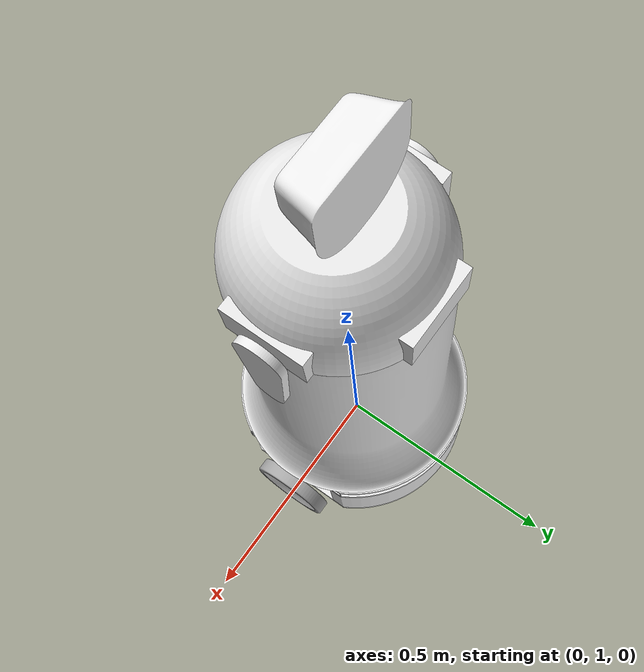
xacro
<?xml version="1.0"?>

<robot name="Walter" xmlns:xacro="http://www.ros.org/wiki/xacro">

    <xacro:include filename="robot_gazebo.xacro" />

    <link name="base">

    </link>

    <link name="fijos_inferior">
        <visual>
            <origin xyz="-3.6429192995512948983e-17 0.20637340124470746061 0.010000000000000000208"
                rpy="0 -0 0" />
            <geometry>
                <mesh filename="package://walter_description/meshes/eje_caster.stl" />
            </geometry>
            <material name="eje_caster_material">
                <color
                    rgba="0.91764705882352937127 0.91764705882352937127 0.91764705882352937127 1.0" />
            </material>
        </visual>
        <collision>
            <origin xyz="-3.6429192995512948983e-17 0.20637340124470746061 0.010000000000000000208"
                rpy="0 -0 0" />
            <geometry>
                <mesh filename="package://walter_description/meshes/eje_caster.stl" />
            </geometry>
        </collision>
        <visual>
            <origin xyz="0 0 0.034999999999999975575" rpy="0 -0 1.570796326794896558" />
            <geometry>
                <mesh filename="package://walter_description/meshes/eje.stl" />
            </geometry>
            <material name="eje_material">
                <color
                    rgba="0.61568627450980395466 0.81176470588235294379 0.92941176470588238168 1.0" />
            </material>
        </visual>
        <collision>
            <origin xyz="0 0 0.034999999999999975575" rpy="0 -0 1.570796326794896558" />
            <geometry>
                <mesh filename="package://walter_description/meshes/eje.stl" />
            </geometry>
        </collision>
        <visual>
            <origin xyz="0 0.20637340124470748837 0.14700000000000001954" rpy="0 -0 0" />
            <geometry>
                <mesh filename="package://walter_description/meshes/part_1.stl" />
            </geometry>
            <material name="part_1_material">
                <color rgba="0.2313725490196078538 0.38039215686274507888 0.7058823529411765163 1.0" />
            </material>
        </visual>
        <collision>
            <origin xyz="0 0.20637340124470748837 0.14700000000000001954" rpy="0 -0 0" />
            <geometry>
                <mesh filename="package://walter_description/meshes/part_1.stl" />
            </geometry>
        </collision>
        <visual>
            <origin xyz="0.03174999999999996575 0.19049840124470746039 -0.038998000000000004883"
                rpy="3.141592653589793116 -0 -1.570796326794896558" />
            <geometry>
                <mesh filename="package://walter_description/meshes/llanta_izquierda.stl" />
            </geometry>
            <material name="llanta_izquierda_material">
                <color
                    rgba="0.91764705882352937127 0.91764705882352937127 0.91764705882352937127 1.0" />
            </material>
        </visual>
        <collision>
            <origin xyz="0.03174999999999996575 0.19049840124470746039 -0.038998000000000004883"
                rpy="3.141592653589793116 -0 -1.570796326794896558" />
            <geometry>
                <mesh filename="package://walter_description/meshes/llanta_izquierda.stl" />
            </geometry>
        </collision>
        <visual>
            <origin xyz="-0.031750000000000062894 -0.19049840124470740488 -0.038998000000000004883"
                rpy="0 -0 -1.570796326794896558" />
            <geometry>
                <mesh filename="package://walter_description/meshes/llanta_izquierda.stl" />
            </geometry>
            <material name="llanta_izquierda_material">
                <color
                    rgba="0.91764705882352937127 0.91764705882352937127 0.91764705882352937127 1.0" />
            </material>
        </visual>
        <collision>
            <origin xyz="-0.031750000000000062894 -0.19049840124470740488 -0.038998000000000004883"
                rpy="0 -0 -1.570796326794896558" />
            <geometry>
                <mesh filename="package://walter_description/meshes/llanta_izquierda.stl" />
            </geometry>
        </collision>
        <visual>
            <origin xyz="0.21499999999999996891 -0.11747340124470734279 0.17240000000000002545"
                rpy="3.141592653589793116 -0 0" />
            <geometry>
                <mesh filename="package://walter_description/meshes/part_1.stl" />
            </geometry>
            <material name="part_1_material">
                <color rgba="0 0 0 1.0" />
            </material>
        </visual>
        <collision>
            <origin xyz="0.21499999999999996891 -0.11747340124470734279 0.17240000000000002545"
                rpy="3.141592653589793116 -0 0" />
            <geometry>
                <mesh filename="package://walter_description/meshes/part_1.stl" />
            </geometry>
        </collision>
        <visual>
            <origin xyz="0 0 0" rpy="0 -0 0" />
            <geometry>
                <mesh filename="package://walter_description/meshes/base.stl" />
            </geometry>
            <material name="base_material">
                <color
                    rgba="0.90196078431372550543 0.90196078431372550543 0.90196078431372550543 1.0" />
            </material>
        </visual>
        <collision>
            <origin xyz="0 0 0" rpy="0 -0 0" />
            <geometry>
                <mesh filename="package://walter_description/meshes/base.stl" />
            </geometry>
        </collision>
        <visual>
            <origin xyz="0.031749999999999944933 -0.19049840124470740488 -0.038998000000000004883"
                rpy="3.141592653589793116 -0 -1.570796326794896558" />
            <geometry>
                <mesh filename="package://walter_description/meshes/llanta_izquierda.stl" />
            </geometry>
            <material name="llanta_izquierda_material">
                <color
                    rgba="0.91764705882352937127 0.91764705882352937127 0.91764705882352937127 1.0" />
            </material>
        </visual>
        <collision>
            <origin xyz="0.031749999999999944933 -0.19049840124470740488 -0.038998000000000004883"
                rpy="3.141592653589793116 -0 -1.570796326794896558" />
            <geometry>
                <mesh filename="package://walter_description/meshes/llanta_izquierda.stl" />
            </geometry>
        </collision>
        <visual>
            <origin xyz="0.21499999999999985789 0.11747340124470750933 0.17240000000000002545"
                rpy="3.141592653589793116 -0 0" />
            <geometry>
                <mesh filename="package://walter_description/meshes/part_1.stl" />
            </geometry>
            <material name="part_1_material">
                <color rgba="0 0 0 1.0" />
            </material>
        </visual>
        <collision>
            <origin xyz="0.21499999999999985789 0.11747340124470750933 0.17240000000000002545"
                rpy="3.141592653589793116 -0 0" />
            <geometry>
                <mesh filename="package://walter_description/meshes/part_1.stl" />
            </geometry>
        </collision>
        <visual>
            <origin
                xyz="2.2204460492503130808e-16 -4.2999999999571159037e-06 0.010000000000000008882"
                rpy="0 -0 0" />
            <geometry>
                <mesh filename="package://walter_description/meshes/part_1.stl" />
            </geometry>
            <material name="part_1_material">
                <color
                    rgba="0.91764705882352937127 0.91764705882352937127 0.91764705882352937127 1.0" />
            </material>
        </visual>
        <collision>
            <origin
                xyz="2.2204460492503130808e-16 -4.2999999999571159037e-06 0.010000000000000008882"
                rpy="0 -0 0" />
            <geometry>
                <mesh filename="package://walter_description/meshes/part_1.stl" />
            </geometry>
        </collision>
        <visual>
            <origin
                xyz="-5.5511151231257827021e-17 1.3877787807814456755e-16 0.18240000000000003433"
                rpy="3.141592653589793116 -0 0" />
            <geometry>
                <mesh filename="package://walter_description/meshes/base.stl" />
            </geometry>
            <material name="base_material">
                <color
                    rgba="0.90196078431372550543 0.90196078431372550543 0.90196078431372550543 1.0" />
            </material>
        </visual>
        <collision>
            <origin
                xyz="-5.5511151231257827021e-17 1.3877787807814456755e-16 0.18240000000000003433"
                rpy="3.141592653589793116 -0 0" />
            <geometry>
                <mesh filename="package://walter_description/meshes/base.stl" />
            </geometry>
        </collision>
        <visual>
            <origin xyz="-3.7024656657773666662e-17 -0.2063734012447074051 0.010000000000000000208"
                rpy="0 -0 1.570796326794896558" />
            <geometry>
                <mesh filename="package://walter_description/meshes/eje_caster.stl" />
            </geometry>
            <material name="eje_caster_material">
                <color
                    rgba="0.91764705882352937127 0.91764705882352937127 0.91764705882352937127 1.0" />
            </material>
        </visual>
        <collision>
            <origin xyz="-3.7024656657773666662e-17 -0.2063734012447074051 0.010000000000000000208"
                rpy="0 -0 1.570796326794896558" />
            <geometry>
                <mesh filename="package://walter_description/meshes/eje_caster.stl" />
            </geometry>
        </collision>
        <visual>
            <origin xyz="0 6.3654714215704502031e-17 0.13700000000000001066" rpy="0 -0 0" />
            <geometry>
                <mesh filename="package://walter_description/meshes/base.stl" />
            </geometry>
            <material name="base_material">
                <color
                    rgba="0.90196078431372550543 0.90196078431372550543 0.90196078431372550543 1.0" />
            </material>
        </visual>
        <collision>
            <origin xyz="0 6.3654714215704502031e-17 0.13700000000000001066" rpy="0 -0 0" />
            <geometry>
                <mesh filename="package://walter_description/meshes/base.stl" />
            </geometry>
        </collision>
        <visual>
            <origin
                xyz="-5.8090702579312169077e-17 -0.17462340124470740466 -0.036458000000000004293"
                rpy="0 -0 -1.570796326794896558" />
            <geometry>
                <mesh filename="package://walter_description/meshes/base_caster.stl" />
            </geometry>
            <material name="base_caster_material">
                <color
                    rgba="0.91764705882352937127 0.91764705882352937127 0.91764705882352937127 1.0" />
            </material>
        </visual>
        <collision>
            <origin
                xyz="-5.8090702579312169077e-17 -0.17462340124470740466 -0.036458000000000004293"
                rpy="0 -0 -1.570796326794896558" />
            <geometry>
                <mesh filename="package://walter_description/meshes/base_caster.stl" />
            </geometry>
        </collision>
        <visual>
            <origin xyz="-3.6429192995512948983e-17 0.20637340124470746061 -0.036458000000000004293"
                rpy="0 -0 -1.570796326794896558" />
            <geometry>
                <mesh filename="package://walter_description/meshes/base_caster.stl" />
            </geometry>
            <material name="base_caster_material">
                <color
                    rgba="0.91764705882352937127 0.91764705882352937127 0.91764705882352937127 1.0" />
            </material>
        </visual>
        <collision>
            <origin xyz="-3.6429192995512948983e-17 0.20637340124470746061 -0.036458000000000004293"
                rpy="0 -0 -1.570796326794896558" />
            <geometry>
                <mesh filename="package://walter_description/meshes/base_caster.stl" />
            </geometry>
        </collision>
        <visual>
            <origin xyz="-0.031750000000000042077 0.19049840124470746039 -0.038998000000000004883"
                rpy="5.6331306980660048516e-17 -1.4803827447097239745 1.57079632679489678" />
            <geometry>
                <mesh filename="package://walter_description/meshes/llanta_izquierda.stl" />
            </geometry>
            <material name="llanta_izquierda_material">
                <color
                    rgba="0.91764705882352937127 0.91764705882352937127 0.91764705882352937127 1.0" />
            </material>
        </visual>
        <collision>
            <origin xyz="-0.031750000000000042077 0.19049840124470746039 -0.038998000000000004883"
                rpy="5.6331306980660048516e-17 -1.4803827447097239745 1.57079632679489678" />
            <geometry>
                <mesh filename="package://walter_description/meshes/llanta_izquierda.stl" />
            </geometry>
        </collision>
        <visual>
            <origin
                xyz="1.1102230246251565404e-16 4.2999999999571159037e-06 0.010000000000000008882"
                rpy="0 -0 2.2204460492503130808e-16" />
            <geometry>
                <mesh filename="package://walter_description/meshes/part_2.stl" />
            </geometry>
            <material name="part_2_material">
                <color
                    rgba="0.91764705882352937127 0.91764705882352937127 0.91764705882352937127 1.0" />
            </material>
        </visual>
        <collision>
            <origin
                xyz="1.1102230246251565404e-16 4.2999999999571159037e-06 0.010000000000000008882"
                rpy="0 -0 2.2204460492503130808e-16" />
            <geometry>
                <mesh filename="package://walter_description/meshes/part_2.stl" />
            </geometry>
        </collision>
        <visual>
            <origin xyz="0 0 0.010000000000000008882" rpy="0 -0 0" />
            <geometry>
                <mesh filename="package://walter_description/meshes/tope.stl" />
            </geometry>
            <material name="tope_material">
                <color
                    rgba="0.61568627450980395466 0.81176470588235294379 0.92941176470588238168 1.0" />
            </material>
        </visual>
        <collision>
            <origin xyz="0 0 0.010000000000000008882" rpy="0 -0 0" />
            <geometry>
                <mesh filename="package://walter_description/meshes/tope.stl" />
            </geometry>
        </collision>
        <visual>
            <origin xyz="-0.21499999999999996891 -0.11747340124470739831 0.17240000000000002545"
                rpy="3.141592653589793116 -0 0" />
            <geometry>
                <mesh filename="package://walter_description/meshes/part_1.stl" />
            </geometry>
            <material name="part_1_material">
                <color rgba="0 0 0 1.0" />
            </material>
        </visual>
        <collision>
            <origin xyz="-0.21499999999999996891 -0.11747340124470739831 0.17240000000000002545"
                rpy="3.141592653589793116 -0 0" />
            <geometry>
                <mesh filename="package://walter_description/meshes/part_1.stl" />
            </geometry>
        </collision>
        <visual>
            <origin xyz="-0.21499999999999996891 0.11747340124470750933 0.17240000000000002545"
                rpy="3.141592653589793116 -0 0" />
            <geometry>
                <mesh filename="package://walter_description/meshes/part_1.stl" />
            </geometry>
            <material name="part_1_material">
                <color rgba="0 0 0 1.0" />
            </material>
        </visual>
        <collision>
            <origin xyz="-0.21499999999999996891 0.11747340124470750933 0.17240000000000002545"
                rpy="3.141592653589793116 -0 0" />
            <geometry>
                <mesh filename="package://walter_description/meshes/part_1.stl" />
            </geometry>
        </collision>
        <inertial>
            <origin
                xyz="-2.8287923786776706519e-16 0.00070076403068547931871 0.063721129461609529732"
                rpy="0 0 0" />
            <mass value="3.2429759430528646291" />
            <inertia ixx="0.10415453865160918812" ixy="-2.8043566817695375626e-17"
                ixz="8.2789000264635315141e-18" iyy="0.058090716254930119256"
                iyz="-0.00020983177751532813946" izz="0.15081168997690380662" />
        </inertial>
    </link>

    <link name="rueda">
        <visual>
            <origin xyz="0 1.7347234759768070944e-18 -0.015000000000000013323"
                rpy="1.570796326794896558 -4.8166279312749192404e-17 1.1043110575768980303e-17" />
            <geometry>
                <mesh filename="package://walter_description/meshes/llanta.stl" />
            </geometry>
            <material name="llanta_material">
                <color
                    rgba="0.64705882352941179736 0.64705882352941179736 0.64705882352941179736 1.0" />
            </material>
        </visual>
        <collision>
            <origin xyz="0 1.7347234759768070944e-18 -0.015000000000000013323"
                rpy="1.570796326794896558 -4.8166279312749192404e-17 1.1043110575768980303e-17" />
            <geometry>
                <mesh filename="package://walter_description/meshes/llanta.stl" />
            </geometry>
        </collision>
        <visual>
            <origin xyz="0 1.7347234759768070944e-18 -0.015000000000000013323"
                rpy="1.570796326794896558 4.8166279312749192404e-17 1.1043110575768980303e-17" />
            <geometry>
                <mesh filename="package://walter_description/meshes/aro.stl" />
            </geometry>
            <material name="aro_material">
                <color
                    rgba="0.91764705882352937127 0.91764705882352937127 0.91764705882352937127 1.0" />
            </material>
        </visual>
        <collision>
            <origin xyz="0 1.7347234759768070944e-18 -0.015000000000000013323"
                rpy="1.570796326794896558 4.8166279312749192404e-17 1.1043110575768980303e-17" />
            <geometry>
                <mesh filename="package://walter_description/meshes/aro.stl" />
            </geometry>
        </collision>
        <inertial>
            <origin
                xyz="4.0773657910392119231e-19 2.1184185656962591992e-18 -0.015000000000000015057"
                rpy="0 0 0" />
            <mass value="0.93131769000272324188" />
            <inertia ixx="0.0015774552565937652922" ixy="6.1581051987138702135e-20"
                ixz="5.0366822783115332543e-20" iyy="0.0015774552565937659428"
                iyz="-1.55152145863287197e-36" izz="0.0030708700939155232114" />
        </inertial>
    </link>

    <link name="rueda_2">
        <visual>
            <origin
                xyz="3.4694469519536141888e-18 3.4694469519536141888e-18 -0.014999999999999930056"
                rpy="-1.570796326794896558 4.8166279312749525204e-17 -3.9942434222536576438e-17" />
            <geometry>
                <mesh filename="package://walter_description/meshes/llanta.stl" />
            </geometry>
            <material name="llanta_material">
                <color
                    rgba="0.64705882352941179736 0.64705882352941179736 0.64705882352941179736 1.0" />
            </material>
        </visual>
        <collision>
            <origin
                xyz="3.4694469519536141888e-18 3.4694469519536141888e-18 -0.014999999999999930056"
                rpy="-1.570796326794896558 4.8166279312749525204e-17 -3.9942434222536576438e-17" />
            <geometry>
                <mesh filename="package://walter_description/meshes/llanta.stl" />
            </geometry>
        </collision>
        <visual>
            <origin
                xyz="3.4694469519536141888e-18 3.4694469519536141888e-18 -0.015000000000000013323"
                rpy="-1.570796326794896558 -4.8166279312749254034e-17 -3.9942434222536576438e-17" />
            <geometry>
                <mesh filename="package://walter_description/meshes/aro.stl" />
            </geometry>
            <material name="aro_material">
                <color
                    rgba="0.91764705882352937127 0.91764705882352937127 0.91764705882352937127 1.0" />
            </material>
        </visual>
        <collision>
            <origin
                xyz="3.4694469519536141888e-18 3.4694469519536141888e-18 -0.015000000000000013323"
                rpy="-1.570796326794896558 -4.8166279312749254034e-17 -3.9942434222536576438e-17" />
            <geometry>
                <mesh filename="package://walter_description/meshes/aro.stl" />
            </geometry>
        </collision>
        <inertial>
            <origin
                xyz="3.877183531057536296e-18 3.0857518622341620841e-18 -0.015000000000000006384"
                rpy="0 0 0" />
            <mass value="0.93131769000272324188" />
            <inertia ixx="0.0015774552565937659428" ixy="-1.8370398119808311534e-19"
                ixz="-5.0366822783115145968e-20" iyy="0.0015774552565937659428"
                iyz="-3.1297914736088726961e-34" izz="0.0030708700939155232114" />
        </inertial>
    </link>

    <link name="panza">
        <visual>
            <origin xyz="0 1.4818226269682977973e-17 0" rpy="3.141592653589793116 -0 0" />
            <geometry>
                <mesh filename="package://walter_description/meshes/torso.stl" />
            </geometry>
            <material name="torso_material">
                <color
                    rgba="0.90196078431372550543 0.90196078431372550543 0.90196078431372550543 1.0" />
            </material>
        </visual>
        <collision>
            <origin xyz="0 1.4818226269682977973e-17 0" rpy="3.141592653589793116 -0 0" />
            <geometry>
                <mesh filename="package://walter_description/meshes/torso.stl" />
            </geometry>
        </collision>
        <inertial>
            <origin
                xyz="1.5535797947362211452e-06 1.4903436437218943342e-07 -0.29803198679450909614"
                rpy="0 0 0" />
            <mass value="102.38152152064435541" />
            <inertia ixx="4.453162302546232354" ixy="-6.4620396263465369413e-06"
                ixz="-1.4643893877306453358e-05" iyy="4.4533587203083602191"
                iyz="-9.0042306279200009643e-06" izz="1.9581434344903740907" />
        </inertial>
    </link>

    <link name="cabeza_pecho">
        <visual>
            <origin xyz="0 0 0" rpy="3.141592653589793116 -0 0" />
            <geometry>
                <mesh filename="package://walter_description/meshes/pecho.stl" />
            </geometry>
            <material name="pecho_material">
                <color
                    rgba="0.90196078431372550543 0.90196078431372550543 0.90196078431372550543 1.0" />
            </material>
        </visual>
        <collision>
            <origin xyz="0 0 0" rpy="3.141592653589793116 -0 0" />
            <geometry>
                <mesh filename="package://walter_description/meshes/pecho.stl" />
            </geometry>
        </collision>
        <visual>
            <origin xyz="0.035000000000000003331 0 -0.26999999999999990674"
                rpy="3.141592653589793116 -0 0" />
            <geometry>
                <mesh filename="package://walter_description/meshes/cabeza.stl" />
            </geometry>
            <material name="cabeza_material">
                <color
                    rgba="0.90196078431372550543 0.90196078431372550543 0.90196078431372550543 1.0" />
            </material>
        </visual>
        <collision>
            <origin xyz="0.035000000000000003331 0 -0.26999999999999990674"
                rpy="3.141592653589793116 -0 0" />
            <geometry>
                <mesh filename="package://walter_description/meshes/cabeza.stl" />
            </geometry>
        </collision>
        <visual>
            <origin xyz="0 0.20499999999999998779 -0.013749999999999928946"
                rpy="3.141592653589793116 -0 3.141592653589793116" />
            <geometry>
                <mesh filename="package://walter_description/meshes/brazo1.stl" />
            </geometry>
            <material name="brazo1_material">
                <color
                    rgba="0.90196078431372550543 0.90196078431372550543 0.90196078431372550543 1.0" />
            </material>
        </visual>
        <collision>
            <origin xyz="0 0.20499999999999998779 -0.013749999999999928946"
                rpy="3.141592653589793116 -0 3.141592653589793116" />
            <geometry>
                <mesh filename="package://walter_description/meshes/brazo1.stl" />
            </geometry>
        </collision>
        <visual>
            <origin xyz="0 -0.19000000000000000222 -0.013749999999999928946"
                rpy="3.141592653589793116 -0 3.141592653589793116" />
            <geometry>
                <mesh filename="package://walter_description/meshes/brazo1.stl" />
            </geometry>
            <material name="brazo1_material">
                <color
                    rgba="0.90196078431372550543 0.90196078431372550543 0.90196078431372550543 1.0" />
            </material>
        </visual>
        <collision>
            <origin xyz="0 -0.19000000000000000222 -0.013749999999999928946"
                rpy="3.141592653589793116 -0 3.141592653589793116" />
            <geometry>
                <mesh filename="package://walter_description/meshes/brazo1.stl" />
            </geometry>
        </collision>
        <inertial>
            <origin
                xyz="0.0027034403972882059021 -0.00013515585095054546364 -0.089471824664970320273"
                rpy="0 0 0" />
            <mass value="23.341267721134858704" />
            <inertia ixx="0.3303436338269024608" ixy="1.3249684284778940517e-05"
                ixz="0.0069209153974705006629" iyy="0.29760949615305587468"
                iyz="-0.00058229169129747800071" izz="0.33286393113310386305" />
        </inertial>
    </link>

    <!--Joints -->

    <joint name="base_to_fijos_inferior" type="fixed">
        <parent link="base" />
        <child link="fijos_inferior" />
        <origin rpy="0 0 0" xyz="0 1 0" />
        <axis xyz="0 0 0" />
    </joint>

    <joint name="pecho" type="fixed">
        <origin xyz="0 1.4818226269682977973e-17 -0.625" rpy="0 -0 -1.570796326794896558" />
        <parent link="panza" />
        <child link="cabeza_pecho" />
        <axis xyz="0 0 1" />
        <joint_properties friction="0.0" />
    </joint>

    <joint name="cuerpo" type="fixed">
        <origin xyz="-2.7755575615628913511e-17 1.6747389215564200228e-16 0.18240000000000000657"
            rpy="3.141592653589793116 -0 0" />
        <parent link="fijos_inferior" />
        <child link="panza" />
        <axis xyz="0 0 1" />
        <joint_properties friction="0.0" />
    </joint>

    <joint name="rueda_derecha" type="continuous">
        <origin xyz="-0.22999999999999992673 4.0679265511656125131e-17 0.03500000000000001027"
            rpy="1.570796326794896558 1.3479208634112187504 1.570796326794896558" />
        <parent link="fijos_inferior" />
        <child link="rueda" />
        <axis xyz="0 0 1" />
        <limit effort="1.0" velocity="15" />
        <joint_properties friction="0.5" />
    </joint>

    <joint name="rueda_izquierda" type="continuous">
        <origin xyz="0.23000000000000003775 2.709212512037618612e-18 0.035000000000000003331"
            rpy="1.5707963267948978903 -0.79636479796384929131 -1.570796326794896336" />
        <parent link="fijos_inferior" />
        <child link="rueda_2" />
        <axis xyz="0 0 1" />
        <limit effort="1.0" velocity="15" />
        <joint_properties friction="0.5" />
    </joint>

</robot>
